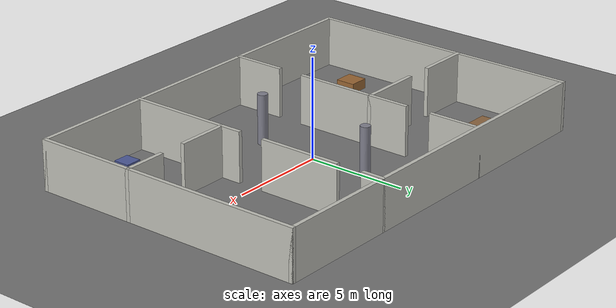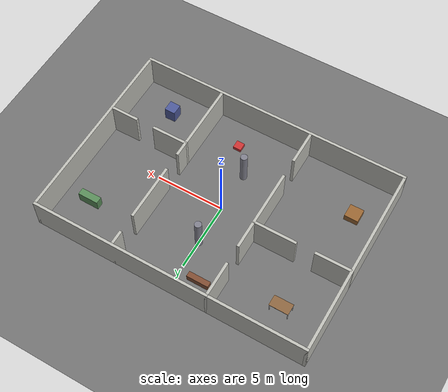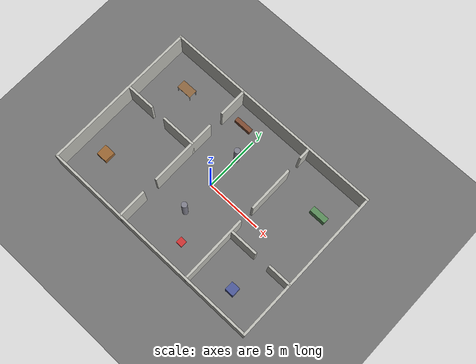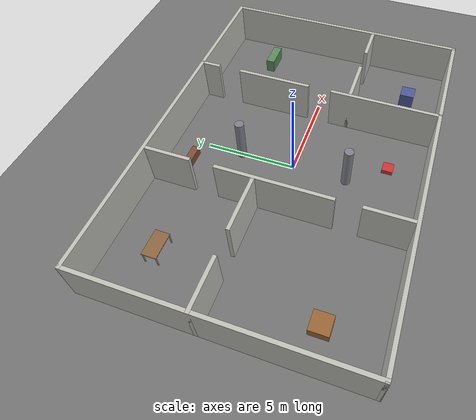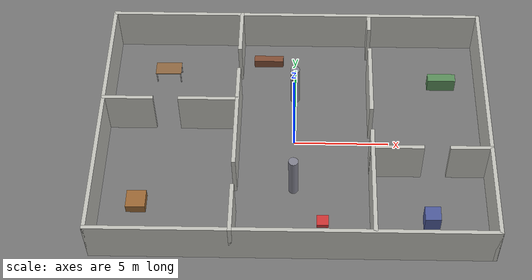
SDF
<?xml version="1.0"?>
<sdf version="1.9">
  <world name="origin_office">
    <spherical_coordinates>
      <surface_model>EARTH_WGS84</surface_model>
      <world_frame_orientation>ENU</world_frame_orientation>
      <latitude_deg>51.453423125136865</latitude_deg>
      <longitude_deg>5.448826930660351</longitude_deg>
      <elevation>0</elevation>
      <heading_deg>0</heading_deg>
    </spherical_coordinates>

    <physics name="1ms" type="ignored">
      <max_step_size>0.01</max_step_size>
      <real_time_factor>1.0</real_time_factor>
    </physics>
    <plugin filename="gz-sim-physics-system" name="gz::sim::systems::Physics"/>
    <plugin filename="gz-sim-scene-broadcaster-system" name="gz::sim::systems::SceneBroadcaster"/>
    <plugin filename="gz-sim-user-commands-system" name="gz::sim::systems::UserCommands"/>

    <scene>
      <ambient>0.6 0.6 0.6 1</ambient>
      <background>0.8 0.85 0.9 1</background>
      <shadows>false</shadows>
    </scene>

    <light type="directional" name="sun">
      <cast_shadows>false</cast_shadows>
      <pose>0 0 10 0 0 0</pose>
      <diffuse>0.9 0.9 0.9 1</diffuse>
      <specular>0.2 0.2 0.2 1</specular>
      <direction>-0.3 0.2 -0.9</direction>
    </light>

    <model name="ground_plane">
      <static>true</static>
      <link name="link">
        <collision name="c"><geometry><plane><normal>0 0 1</normal><size>40 30</size></plane></geometry>
          <surface><friction><ode><mu>1</mu><mu2>1</mu2></ode></friction></surface></collision>
        <visual name="v"><geometry><plane><normal>0 0 1</normal><size>40 30</size></plane></geometry>
          <material><ambient>0.45 0.45 0.45 1</ambient><diffuse>0.45 0.45 0.45 1</diffuse></material></visual>
      </link>
    </model>

    <model name="wall_00">
      <static>true</static>
      <pose>0.0 -7 1.25 0 0 0</pose>
      <link name="link">
        <collision name="c"><geometry><box><size>20.2 0.2 2.5</size></box></geometry></collision>
        <visual name="v"><geometry><box><size>20.2 0.2 2.5</size></box></geometry>
          <material><ambient>0.75 0.75 0.72 1</ambient><diffuse>0.75 0.75 0.72 1</diffuse></material></visual>
      </link>
    </model>
    <model name="wall_01">
      <static>true</static>
      <pose>0.0 7 1.25 0 0 0</pose>
      <link name="link">
        <collision name="c"><geometry><box><size>20.2 0.2 2.5</size></box></geometry></collision>
        <visual name="v"><geometry><box><size>20.2 0.2 2.5</size></box></geometry>
          <material><ambient>0.75 0.75 0.72 1</ambient><diffuse>0.75 0.75 0.72 1</diffuse></material></visual>
      </link>
    </model>
    <model name="wall_02">
      <static>true</static>
      <pose>-10 0.0 1.25 0 0 0</pose>
      <link name="link">
        <collision name="c"><geometry><box><size>0.2 14.2 2.5</size></box></geometry></collision>
        <visual name="v"><geometry><box><size>0.2 14.2 2.5</size></box></geometry>
          <material><ambient>0.75 0.75 0.72 1</ambient><diffuse>0.75 0.75 0.72 1</diffuse></material></visual>
      </link>
    </model>
    <model name="wall_03">
      <static>true</static>
      <pose>10 0.0 1.25 0 0 0</pose>
      <link name="link">
        <collision name="c"><geometry><box><size>0.2 14.2 2.5</size></box></geometry></collision>
        <visual name="v"><geometry><box><size>0.2 14.2 2.5</size></box></geometry>
          <material><ambient>0.75 0.75 0.72 1</ambient><diffuse>0.75 0.75 0.72 1</diffuse></material></visual>
      </link>
    </model>
    <model name="wall_04">
      <static>true</static>
      <pose>-3 -5.75 1.25 0 0 0</pose>
      <link name="link">
        <collision name="c"><geometry><box><size>0.2 2.7 2.5</size></box></geometry></collision>
        <visual name="v"><geometry><box><size>0.2 2.7 2.5</size></box></geometry>
          <material><ambient>0.75 0.75 0.72 1</ambient><diffuse>0.75 0.75 0.72 1</diffuse></material></visual>
      </link>
    </model>
    <model name="wall_05">
      <static>true</static>
      <pose>-3 0.0 1.25 0 0 0</pose>
      <link name="link">
        <collision name="c"><geometry><box><size>0.2 6.2 2.5</size></box></geometry></collision>
        <visual name="v"><geometry><box><size>0.2 6.2 2.5</size></box></geometry>
          <material><ambient>0.75 0.75 0.72 1</ambient><diffuse>0.75 0.75 0.72 1</diffuse></material></visual>
      </link>
    </model>
    <model name="wall_06">
      <static>true</static>
      <pose>-3 5.75 1.25 0 0 0</pose>
      <link name="link">
        <collision name="c"><geometry><box><size>0.2 2.7 2.5</size></box></geometry></collision>
        <visual name="v"><geometry><box><size>0.2 2.7 2.5</size></box></geometry>
          <material><ambient>0.75 0.75 0.72 1</ambient><diffuse>0.75 0.75 0.72 1</diffuse></material></visual>
      </link>
    </model>
    <model name="wall_07">
      <static>true</static>
      <pose>4 -4.0 1.25 0 0 0</pose>
      <link name="link">
        <collision name="c"><geometry><box><size>0.2 6.2 2.5</size></box></geometry></collision>
        <visual name="v"><geometry><box><size>0.2 6.2 2.5</size></box></geometry>
          <material><ambient>0.75 0.75 0.72 1</ambient><diffuse>0.75 0.75 0.72 1</diffuse></material></visual>
      </link>
    </model>
    <model name="wall_08">
      <static>true</static>
      <pose>4 2.5 1.25 0 0 0</pose>
      <link name="link">
        <collision name="c"><geometry><box><size>0.2 4.2 2.5</size></box></geometry></collision>
        <visual name="v"><geometry><box><size>0.2 4.2 2.5</size></box></geometry>
          <material><ambient>0.75 0.75 0.72 1</ambient><diffuse>0.75 0.75 0.72 1</diffuse></material></visual>
      </link>
    </model>
    <model name="wall_09">
      <static>true</static>
      <pose>4 6.5 1.25 0 0 0</pose>
      <link name="link">
        <collision name="c"><geometry><box><size>0.2 1.2 2.5</size></box></geometry></collision>
        <visual name="v"><geometry><box><size>0.2 1.2 2.5</size></box></geometry>
          <material><ambient>0.75 0.75 0.72 1</ambient><diffuse>0.75 0.75 0.72 1</diffuse></material></visual>
      </link>
    </model>
    <model name="wall_10">
      <static>true</static>
      <pose>-8.75 1 1.25 0 0 0</pose>
      <link name="link">
        <collision name="c"><geometry><box><size>2.7 0.2 2.5</size></box></geometry></collision>
        <visual name="v"><geometry><box><size>2.7 0.2 2.5</size></box></geometry>
          <material><ambient>0.75 0.75 0.72 1</ambient><diffuse>0.75 0.75 0.72 1</diffuse></material></visual>
      </link>
    </model>
    <model name="wall_11">
      <static>true</static>
      <pose>-4.5 1 1.25 0 0 0</pose>
      <link name="link">
        <collision name="c"><geometry><box><size>3.2 0.2 2.5</size></box></geometry></collision>
        <visual name="v"><geometry><box><size>3.2 0.2 2.5</size></box></geometry>
          <material><ambient>0.75 0.75 0.72 1</ambient><diffuse>0.75 0.75 0.72 1</diffuse></material></visual>
      </link>
    </model>
    <model name="wall_12">
      <static>true</static>
      <pose>5.25 -2 1.25 0 0 0</pose>
      <link name="link">
        <collision name="c"><geometry><box><size>2.7 0.2 2.5</size></box></geometry></collision>
        <visual name="v"><geometry><box><size>2.7 0.2 2.5</size></box></geometry>
          <material><ambient>0.75 0.75 0.72 1</ambient><diffuse>0.75 0.75 0.72 1</diffuse></material></visual>
      </link>
    </model>
    <model name="wall_13">
      <static>true</static>
      <pose>9.0 -2 1.25 0 0 0</pose>
      <link name="link">
        <collision name="c"><geometry><box><size>2.2 0.2 2.5</size></box></geometry></collision>
        <visual name="v"><geometry><box><size>2.2 0.2 2.5</size></box></geometry>
          <material><ambient>0.75 0.75 0.72 1</ambient><diffuse>0.75 0.75 0.72 1</diffuse></material></visual>
      </link>
    </model>
    <model name="pillar_n">
      <static>true</static>
      <pose>0 3 1.25 0 0 0</pose>
      <link name="link">
        <collision name="c"><geometry><cylinder><radius>0.25</radius><length>2.5</length></cylinder></geometry></collision>
        <visual name="v"><geometry><cylinder><radius>0.25</radius><length>2.5</length></cylinder></geometry>
          <material><ambient>0.5 0.5 0.55 1</ambient><diffuse>0.5 0.5 0.55 1</diffuse></material></visual>
      </link>
    </model>
    <model name="pillar_s">
      <static>true</static>
      <pose>0 -3 1.25 0 0 0</pose>
      <link name="link">
        <collision name="c"><geometry><cylinder><radius>0.25</radius><length>2.5</length></cylinder></geometry></collision>
        <visual name="v"><geometry><cylinder><radius>0.25</radius><length>2.5</length></cylinder></geometry>
          <material><ambient>0.5 0.5 0.55 1</ambient><diffuse>0.5 0.5 0.55 1</diffuse></material></visual>
      </link>
    </model>
    <model name="crate_w">
      <static>true</static>
      <pose>-8 -4 0.25 0 0 0</pose>
      <link name="link">
        <collision name="c"><geometry><box><size>1.0 1.0 0.5</size></box></geometry></collision>
        <visual name="v"><geometry><box><size>1.0 1.0 0.5</size></box></geometry>
          <material><ambient>0.6 0.4 0.2 1</ambient><diffuse>0.6 0.4 0.2 1</diffuse></material></visual>
      </link>
    </model>
    <model name="cabinet_se">
      <static>true</static>
      <pose>7 -5 0.5 0 0 0</pose>
      <link name="link">
        <collision name="c"><geometry><box><size>0.8 0.8 1.0</size></box></geometry></collision>
        <visual name="v"><geometry><box><size>0.8 0.8 1.0</size></box></geometry>
          <material><ambient>0.3 0.35 0.6 1</ambient><diffuse>0.3 0.35 0.6 1</diffuse></material></visual>
      </link>
    </model>
    <model name="shelf_ne">
      <static>true</static>
      <pose>8 4 0.4 0 0 0</pose>
      <link name="link">
        <collision name="c"><geometry><box><size>1.5 0.5 0.8</size></box></geometry></collision>
        <visual name="v"><geometry><box><size>1.5 0.5 0.8</size></box></geometry>
          <material><ambient>0.35 0.55 0.35 1</ambient><diffuse>0.35 0.55 0.35 1</diffuse></material></visual>
      </link>
    </model>
    <model name="low_box_hall">
      <static>true</static>
      <pose>1.5 -5 0.125 0 0 0</pose>
      <link name="link">
        <collision name="c"><geometry><box><size>0.6 0.6 0.25</size></box></geometry></collision>
        <visual name="v"><geometry><box><size>0.6 0.6 0.25</size></box></geometry>
          <material><ambient>0.8 0.2 0.2 1</ambient><diffuse>0.8 0.2 0.2 1</diffuse></material></visual>
      </link>
    </model>
    <model name="bench_hall">
      <static>true</static>
      <pose>-1.5 5.5 0.25 0 0 0</pose>
      <link name="link">
        <collision name="c"><geometry><box><size>1.6 0.4 0.5</size></box></geometry></collision>
        <visual name="v"><geometry><box><size>1.6 0.4 0.5</size></box></geometry>
          <material><ambient>0.5 0.3 0.2 1</ambient><diffuse>0.5 0.3 0.2 1</diffuse></material></visual>
      </link>
    </model>
    <model name="table_nw">
      <static>true</static>
      <pose>-7 4.5 0 0 0 0</pose>
      <link name="link">
        <collision name="top_c"><pose>0 0 0.73 0 0 0</pose><geometry><box><size>1.4 0.8 0.04</size></box></geometry></collision>
        <visual name="top_v"><pose>0 0 0.73 0 0 0</pose><geometry><box><size>1.4 0.8 0.04</size></box></geometry>
          <material><ambient>0.55 0.4 0.25 1</ambient><diffuse>0.55 0.4 0.25 1</diffuse></material></visual>
        <collision name="leg0_c"><pose>0.65 0.35 0.355 0 0 0</pose><geometry><box><size>0.05 0.05 0.71</size></box></geometry></collision>
        <visual name="leg0_v"><pose>0.65 0.35 0.355 0 0 0</pose><geometry><box><size>0.05 0.05 0.71</size></box></geometry></visual>
        <collision name="leg1_c"><pose>-0.65 0.35 0.355 0 0 0</pose><geometry><box><size>0.05 0.05 0.71</size></box></geometry></collision>
        <visual name="leg1_v"><pose>-0.65 0.35 0.355 0 0 0</pose><geometry><box><size>0.05 0.05 0.71</size></box></geometry></visual>
        <collision name="leg2_c"><pose>0.65 -0.35 0.355 0 0 0</pose><geometry><box><size>0.05 0.05 0.71</size></box></geometry></collision>
        <visual name="leg2_v"><pose>0.65 -0.35 0.355 0 0 0</pose><geometry><box><size>0.05 0.05 0.71</size></box></geometry></visual>
        <collision name="leg3_c"><pose>-0.65 -0.35 0.355 0 0 0</pose><geometry><box><size>0.05 0.05 0.71</size></box></geometry></collision>
        <visual name="leg3_v"><pose>-0.65 -0.35 0.355 0 0 0</pose><geometry><box><size>0.05 0.05 0.71</size></box></geometry></visual>
      </link>
    </model>
  </world>
</sdf>
